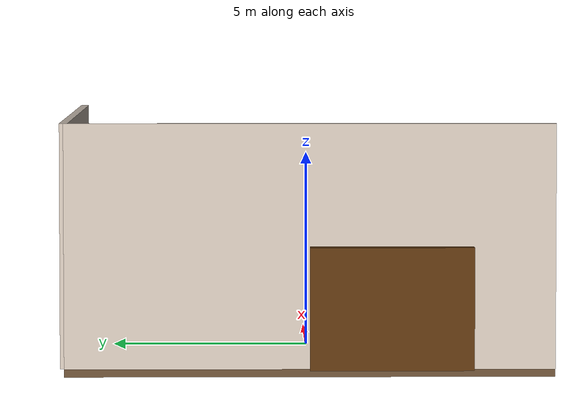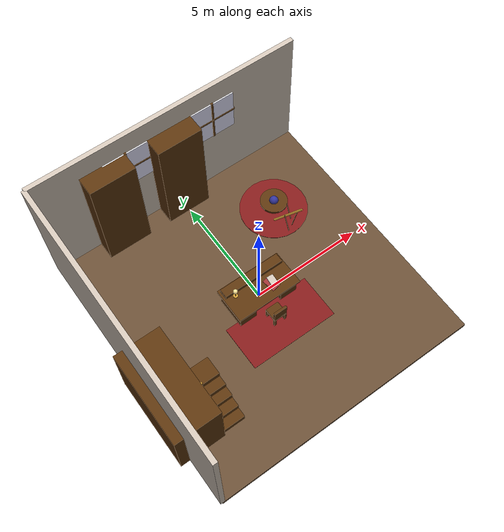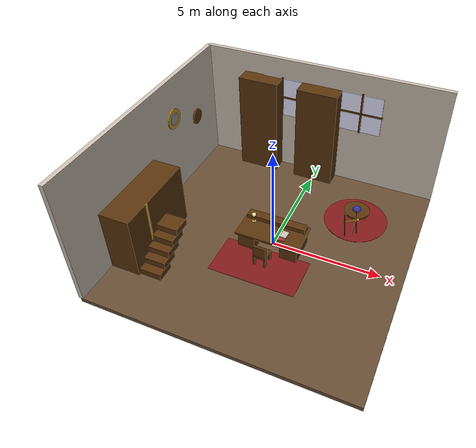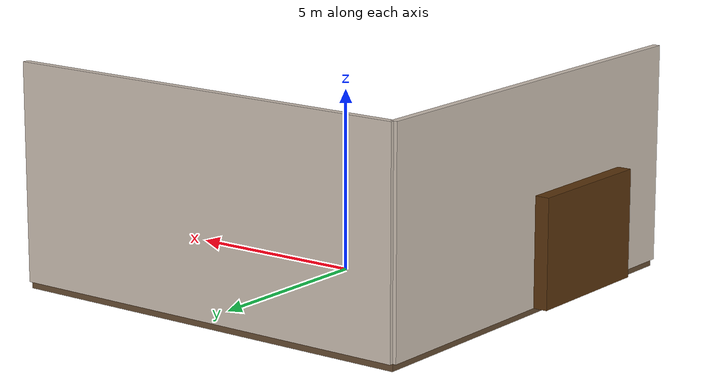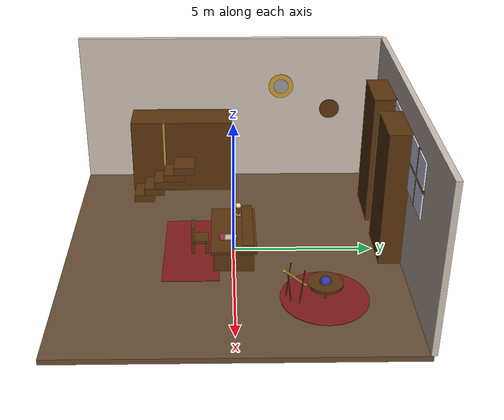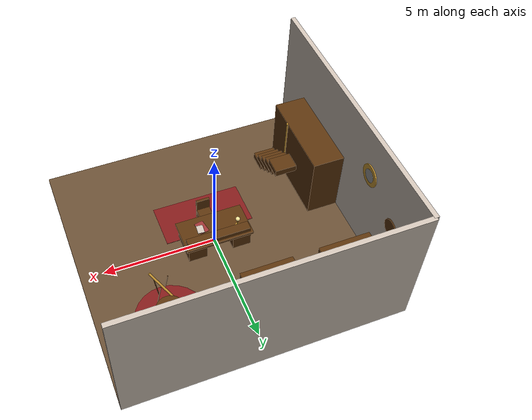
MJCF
<mujoco model="study_room">
  <compiler angle="degree" coordinate="local" inertiafromgeom="true"/>
  <option timestep="0.01" gravity="0 0 -9.81" density="1.2" viscosity="0.1"/>

  <visual>
    <headlight ambient="0.4 0.4 0.4" diffuse="0.6 0.6 0.6" specular="0.1 0.1 0.1"/>
    <map fogstart="3" fogend="10" force="0.1" zfar="30"/>
    <quality shadowsize="4096"/>
    <global offwidth="1920" offheight="1080"/>
  </visual>

  <asset>
    <texture type="skybox" builtin="gradient" rgb1="0.1 0.1 0.1" rgb2="0 0 0" width="512" height="512"/>
    <texture name="floor_tex" type="2d" builtin="flat" rgb1="0.4 0.3 0.2" width="512" height="512"/>
    <texture name="wood_tex" type="2d" builtin="flat" rgb1="0.35 0.2 0.05" width="512" height="512"/>
    <texture name="wall_tex" type="2d" builtin="flat" rgb1="0.8 0.75 0.7" width="512" height="512"/>
    <texture name="window_tex" type="2d" builtin="flat" rgb1="0.9 0.9 1.0" width="512" height="512"/>
    <texture name="fabric_tex" type="2d" builtin="flat" rgb1="0.5 0.1 0.1" width="512" height="512"/>

    <material name="floor_mat" texture="floor_tex" reflectance="0.1"/>
    <material name="wood_mat" texture="wood_tex" reflectance="0.1"/>
    <material name="wall_mat" texture="wall_tex" reflectance="0"/>
    <material name="window_mat" texture="window_tex" reflectance="0.5" emission="0.2"/>
    <material name="metal_mat" rgba="0.6 0.6 0.6 1" reflectance="0.5" shininess="0.8"/>
    <material name="gold_mat" rgba="0.8 0.6 0.2 1" reflectance="0.8" shininess="1"/>
    <material name="book_red" rgba="0.6 0.2 0.2 1"/>
    <material name="book_blue" rgba="0.2 0.2 0.6 1"/>
    <material name="book_green" rgba="0.2 0.5 0.2 1"/>
    <material name="rug_mat" texture="fabric_tex" reflectance="0.1"/>
    <material name="lamp_glow" rgba="1 0.9 0.6 1" emission="0.8"/>
  </asset>

  <worldbody>
    <!-- Camera -->
    <camera name="isometric_view" pos="12 -12 12" mode="targetbody" target="center_point"/>

    <!-- Lighting -->
    <light pos="0 0 8" dir="0 0 -1" diffuse="0.8 0.7 0.6" castshadow="true"/>
    <light pos="-5 5 5" dir="1 -1 -0.5" diffuse="0.3 0.3 0.4" castshadow="true"/>
    <!-- Lamp Light -->
    <light pos="0 0 2" dir="0 0 -1" diffuse="0.8 0.6 0.2" attenuation="1 0 0" castshadow="false"/>

    <body name="center_point" pos="0 0 0">
        <geom type="sphere" size="0.01" rgba="0 0 0 0"/>
    </body>

    <!-- Floor -->
    <geom name="floor" type="box" size="6 6 0.1" pos="0 0 -0.1" material="floor_mat"/>

    <!-- Walls -->
    <geom name="wall_back" type="box" size="6 0.1 3" pos="0 6 3" material="wall_mat"/>
    <geom name="wall_left" type="box" size="0.1 6 3" pos="-6 0 3" material="wall_mat"/>

    <!-- Wall Decor (Gears/Clocks) -->
    <body name="wall_decor" pos="-5.9 2 4">
        <geom type="cylinder" size="0.5 0.05" euler="0 90 0" material="gold_mat"/>
        <geom type="cylinder" size="0.3 0.06" euler="0 90 0" material="metal_mat"/>
    </body>
    <body name="wall_decor2" pos="-5.9 4 3">
        <geom type="cylinder" size="0.4 0.05" euler="0 90 0" material="wood_mat"/>
    </body>

    <!-- Windows -->
    <body name="window1" pos="-2 5.9 4">
        <geom type="box" size="1 0.05 1" material="window_mat"/>
        <geom type="box" size="1.05 0.06 0.05" pos="0 0 0" material="wood_mat"/>
        <geom type="box" size="0.05 0.06 1.05" pos="0 0 0" material="wood_mat"/>
    </body>
    <body name="window2" pos="2 5.9 4">
        <geom type="box" size="1 0.05 1" material="window_mat"/>
        <geom type="box" size="1.05 0.06 0.05" pos="0 0 0" material="wood_mat"/>
        <geom type="box" size="0.05 0.06 1.05" pos="0 0 0" material="wood_mat"/>
    </body>

    <!-- Stairs -->
    <body name="stairs_structure" pos="-5 -2 0">
        <geom name="platform" type="box" size="1 2 1.5" pos="-0.5 0 1.5" material="wood_mat"/>
        <geom type="box" size="1 0.4 0.15" pos="0.5 -1.5 0.15" material="wood_mat"/>
        <geom type="box" size="1 0.4 0.15" pos="0.5 -1.1 0.45" material="wood_mat"/>
        <geom type="box" size="1 0.4 0.15" pos="0.5 -0.7 0.75" material="wood_mat"/>
        <geom type="box" size="1 0.4 0.15" pos="0.5 -0.3 1.05" material="wood_mat"/>
        <geom type="box" size="1 0.4 0.15" pos="0.5 0.1 1.35" material="wood_mat"/>
        <!-- Railing -->
        <geom type="cylinder" size="0.05 1" pos="0.5 -0.7 2" material="gold_mat"/>
    </body>

    <!-- Bookshelves -->
    <body name="bookshelf1" pos="-3 5.5 0">
        <geom type="box" size="1 0.4 2.5" pos="0 0 2.5" material="wood_mat"/>
        <geom type="box" size="0.9 0.4 0.05" pos="0 0.05 1" material="wood_mat"/>
        <geom type="box" size="0.9 0.4 0.05" pos="0 0.05 2" material="wood_mat"/>
        <geom type="box" size="0.9 0.4 0.05" pos="0 0.05 3" material="wood_mat"/>
        <geom type="box" size="0.9 0.4 0.05" pos="0 0.05 4" material="wood_mat"/>
        <!-- Books -->
        <geom type="box" size="0.1 0.3 0.2" pos="-0.5 0.1 1.25" material="book_red"/>
        <geom type="box" size="0.1 0.3 0.18" pos="-0.3 0.1 1.23" material="book_blue"/>
        <geom type="box" size="0.1 0.3 0.22" pos="-0.1 0.1 1.27" material="book_green"/>
        <geom type="box" size="0.1 0.3 0.2" pos="0.2 0.1 2.25" material="book_red"/>
        <geom type="box" size="0.1 0.3 0.18" pos="0.4 0.1 2.23" material="book_blue"/>
    </body>

    <body name="bookshelf2" pos="0 5.5 0">
        <geom type="box" size="1 0.4 2.5" pos="0 0 2.5" material="wood_mat"/>
        <geom type="box" size="0.9 0.4 0.05" pos="0 0.05 1" material="wood_mat"/>
        <geom type="box" size="0.9 0.4 0.05" pos="0 0.05 2" material="wood_mat"/>
        <geom type="box" size="0.9 0.4 0.05" pos="0 0.05 3" material="wood_mat"/>
        <geom type="box" size="0.9 0.4 0.05" pos="0 0.05 4" material="wood_mat"/>
        <!-- Globe on Shelf -->
        <body name="globe_shelf" pos="0 0 3.3">
             <geom type="sphere" size="0.25" material="book_blue"/>
             <geom type="cylinder" size="0.2 0.02" pos="0 0 -0.25" material="gold_mat"/>
        </body>
    </body>

    <!-- Central Desk -->
    <body name="desk" pos="0 0 0">
        <geom type="box" size="1.5 0.8 0.05" pos="0 0 0.8" material="wood_mat"/>
        <geom type="box" size="0.4 0.7 0.4" pos="-1 0 0.4" material="wood_mat"/>
        <geom type="box" size="0.4 0.7 0.4" pos="1 0 0.4" material="wood_mat"/>
        <geom type="box" size="1.4 0.2 0.1" pos="0 0.5 0.95" material="wood_mat"/>

        <!-- Desk Lamp -->
        <body name="desk_lamp" pos="-1 0.2 0.85">
            <geom type="cylinder" size="0.1 0.02" material="gold_mat"/>
            <geom type="capsule" size="0.02 0.2" pos="0 0 0.2" material="gold_mat"/>
            <geom type="sphere" size="0.1" pos="0 0 0.4" material="lamp_glow"/>
        </body>

        <!-- Papers/Books on Desk -->
        <geom type="box" size="0.2 0.3 0.02" pos="0.5 -0.2 0.85" material="book_red" euler="0 0 10"/>
        <geom type="box" size="0.15 0.2 0.02" pos="0.6 -0.1 0.89" material="wall_mat" euler="0 0 -5"/>

        <!-- Chair -->
        <body name="chair" pos="0 -1.2 0" euler="0 0 180">
            <geom type="box" size="0.3 0.3 0.05" pos="0 0 0.5" material="wood_mat"/>
            <geom type="box" size="0.05 0.05 0.25" pos="-0.25 -0.25 0.25" material="wood_mat"/>
            <geom type="box" size="0.05 0.05 0.25" pos="0.25 -0.25 0.25" material="wood_mat"/>
            <geom type="box" size="0.05 0.05 0.25" pos="-0.25 0.25 0.25" material="wood_mat"/>
            <geom type="box" size="0.05 0.05 0.25" pos="0.25 0.25 0.25" material="wood_mat"/>
            <geom type="box" size="0.3 0.05 0.3" pos="0 0.25 0.8" material="wood_mat"/>
        </body>
    </body>

    <!-- Telescope -->
    <body name="telescope" pos="3 2 0" euler="0 0 45">
        <geom type="cylinder" size="0.05 0.8" pos="0 0 0.8" euler="45 0 0" material="gold_mat"/> <!-- Main tube -->
        <geom type="capsule" size="0.02 0.6" pos="0.3 0 0.6" euler="-10 0 0" material="wood_mat"/> <!-- Leg -->
        <geom type="capsule" size="0.02 0.6" pos="-0.3 0 0.6" euler="-10 0 0" material="wood_mat"/> <!-- Leg -->
        <geom type="capsule" size="0.02 0.6" pos="0 -0.3 0.6" euler="10 0 0" material="wood_mat"/> <!-- Leg -->
    </body>

    <!-- Side Table -->
    <body name="side_table" pos="3 3 0">
         <geom type="cylinder" size="0.6 0.05" pos="0 0 0.6" material="wood_mat"/>
         <geom type="cylinder" size="0.05 0.6" pos="0 0 0" material="wood_mat"/>
         <!-- Globe on Side Table -->
         <body name="globe_table" pos="0 0 0.65">
             <geom type="sphere" size="0.2" material="book_blue"/>
             <geom type="cylinder" size="0.15 0.02" pos="0 0 -0.2" material="gold_mat"/>
         </body>
    </body>

    <!-- Rug -->
    <geom name="rug" type="box" size="2 1 0.01" pos="0 -1.5 0.01" material="rug_mat"/>
    <geom name="rug_round" type="cylinder" size="1.5 0.01" pos="3 3 0.01" material="rug_mat"/>

  </worldbody>
</mujoco>
